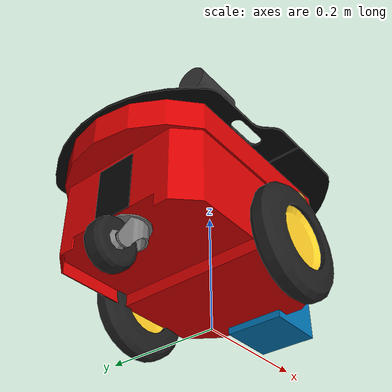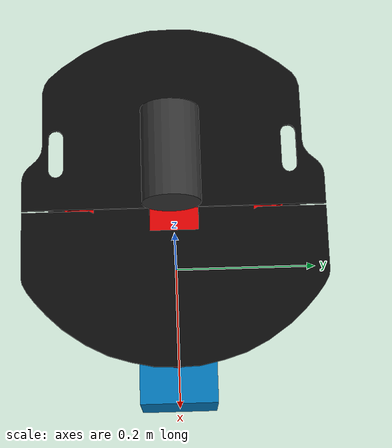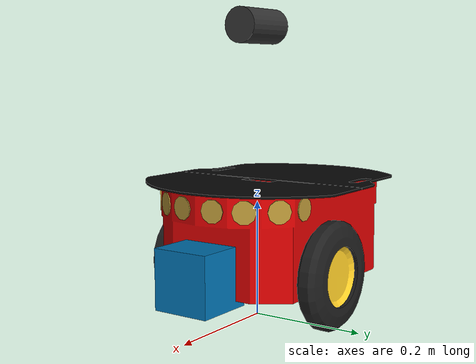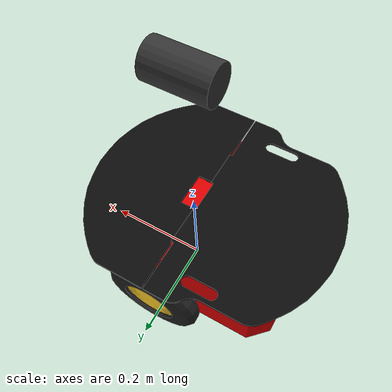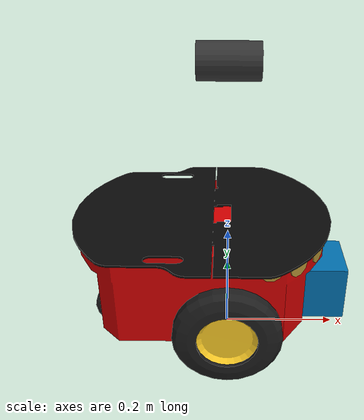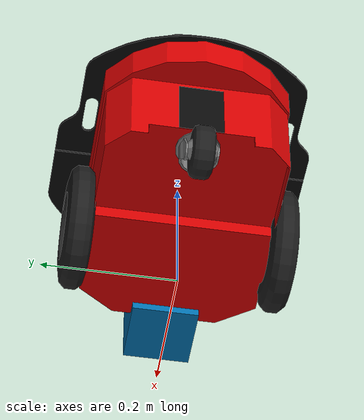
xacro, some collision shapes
<?xml version="1.0"?>
<robot xmlns:xacro="http://www.ros.org/wiki/xacro" name="pioneer3dx" >

  <!-- Import Rviz colors -->
  <xacro:include filename="$(find gazebo_plugins)/test/multi_robot_scenario/xacro/materials.xacro" />

  <!-- Import robot -->
  <xacro:include filename="$(find gazebo_plugins)/test/multi_robot_scenario/xacro/p3dx/pioneer3dx_body.xacro"/>
  <xacro:pioneer3dx_body name="chassis" parent="base_link" meshes="package://gazebo_plugins/test/multi_robot_scenario/meshes/p3dx"/>

  <!-- Laser  -->
  <xacro:include filename="$(find gazebo_plugins)/test/multi_robot_scenario/xacro/laser/hokuyo.xacro"/>
  <xacro:laser name="front_laser" parent="chassis" xyz="0.16 0 0.1" rpy="0 0 0" meshes="package://gazebo_plugins/test/multi_robot_scenario/meshes/laser"/>

  <!-- GPU Laser -->

  <xacro:include filename="$(find gazebo_plugins)/test/multi_robot_scenario/xacro/camera/camera.xacro"/>
  <xacro:cam name="front_camera" parent="chassis" xyz="0 0 0.5" rpy="0 0 0" />

</robot>

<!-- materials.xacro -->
<robot>

  <material name="black">
    <color rgba="0.0 0.0 0.0 1.0"/>
  </material>

  <material name="blue">
    <color rgba="0.0 0.0 0.8 1.0"/>
  </material>

  <material name="green">
    <color rgba="0.0 0.8 0.0 1.0"/>
  </material>

  <material name="grey">
    <color rgba="0.2 0.2 0.2 1.0"/>
  </material>

  <material name="orange">
    <color rgba="${255/255} ${108/255} ${10/255} 1.0"/>
  </material>

  <material name="brown">
    <color rgba="${222/255} ${207/255} ${195/255} 1.0"/>
  </material>

  <material name="red">
    <color rgba="0.8 0.0 0.0 1.0"/>
  </material>

  <material name="white">
    <color rgba="1.0 1.0 1.0 1.0"/>
  </material>

</robot>

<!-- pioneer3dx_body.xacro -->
<robot xmlns:xacro="http://www.ros.org/wiki/xacro">

  <xacro:include filename="inertia_tensors.xacro"/>
  <xacro:include filename="pioneer3dx_chassis.xacro"/>
  <xacro:include filename="battery_block.xacro"/>
  <xacro:include filename="pioneer3dx_wheel.xacro"/>
  <xacro:include filename="pioneer3dx_swivel.xacro"/>
  <xacro:include filename="pioneer3dx_sonar.xacro"/>
  <xacro:include filename="pioneer3dx_plugins.xacro"/>

  <xacro:macro name="pioneer3dx_body" params="name parent meshes">

    <!-- base_link -->
    <link name="${parent}"/>

    <!-- Chassis -->
    <xacro:pioneer_chassis name="${name}" parent="base_link" xyz="0 0 0" rpy="0 0 0"  meshes="${meshes}"/>

    <!-- Front Sonar -->
    <xacro:pioneer_sonar name="sonar" parent="${name}" xyz="0.109 0 0.209" rpy="0 0 0"  meshes="${meshes}"/>

    <!-- Akku0 -->
    <xacro:battery_block name="battery0" parent="${name}" x="-0.14" y="0.00"  z="0.13" mass="2.5" />

    <!-- Wheels -->
    <xacro:pioneer_wheel side="right" parent="${name}"  xyz="0  0.15 0.09" rpy="0 0 0" radius="0.09" meshes="${meshes}"/>
    <xacro:pioneer_wheel side="left"  parent="${name}"  xyz="0 -0.15 0.09" rpy="0 0 0" radius="0.09" meshes="${meshes}"/>
    <xacro:pioneer_swivel parent="${name}"  xyz="-0.185 0 0.055" rpy="0 0 0" meshes="${meshes}"/>

    <!-- Motor plugin -->
    <xacro:pioneer3dx_diff_drive />

    <!-- Joints plugin -->
    <xacro:pioneer3dx_joints_state_publisher />

  </xacro:macro>
</robot>

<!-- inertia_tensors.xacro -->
<!-- Thanks to Martin Guenther
  see https://github.com/uos/uos_tools/blob/fuerte/uos_common_urdf/common.xacro and
  see http://answers.gazebosim.org/question/4372/the-inertia-matrix-explained/ -->
<robot xmlns:xacro="http://ros.org/wiki/xacro">
  <xacro:property name="M_PI" value="3.1415926535897931" />

  <!-- see https://secure.wikimedia.org/wikipedia/en/wiki/List_of_moment_of_inertia_tensors -->

  <!-- #################### versions without origin #################### -->
  <xacro:macro name="sphere_inertial" params="radius mass">
    <inertial>
      <mass value="${mass}" />
      <origin xyz="0 0 0" />
      <inertia ixx="${0.4 * mass * radius * radius}" ixy="0.0" ixz="0.0"
        iyy="${0.4 * mass * radius * radius}" iyz="0.0"
        izz="${0.4 * mass * radius * radius}" />
    </inertial>
  </xacro:macro>

  <xacro:macro name="cylinder_inertial" params="radius length mass">
    <inertial>
      <mass value="${mass}" />
      <origin xyz="0 0 0" />
      <inertia ixx="${0.0833333 * mass * (3 * radius * radius + length * length)}" ixy="0.0" ixz="0.0"
        iyy="${0.0833333 * mass * (3 * radius * radius + length * length)}" iyz="0.0"
        izz="${0.5 * mass * radius * radius}" />
    </inertial>
  </xacro:macro>

  <xacro:macro name="box_inertial" params="x y z mass">
    <inertial>
      <mass value="${mass}" />
      <origin xyz="0 0 0" />
      <inertia ixx="${0.0833333 * mass * (y*y + z*z)}" ixy="0.0" ixz="0.0"
        iyy="${0.0833333 * mass * (x*x + z*z)}" iyz="0.0"
        izz="${0.0833333 * mass * (x*x + y*y)}" />
    </inertial>
  </xacro:macro>

  <!-- #################### versions with origin #################### -->
  <xacro:macro name="sphere_inertial_with_origin" params="radius mass *origin">
    <inertial>
      <mass value="${mass}" />
      <xacro:insert_block name="origin" />
      <inertia ixx="${0.4 * mass * radius * radius}" ixy="0.0" ixz="0.0"
        iyy="${0.4 * mass * radius * radius}" iyz="0.0"
        izz="${0.4 * mass * radius * radius}" />
    </inertial>
  </xacro:macro>

  <xacro:macro name="cylinder_inertial_with_origin" params="radius length mass *origin">
    <inertial>
      <mass value="${mass}" />
      <xacro:insert_block name="origin" />
      <inertia ixx="${0.0833333 * mass * (3 * radius * radius + length * length)}" ixy="0.0" ixz="0.0"
        iyy="${0.0833333 * mass * (3 * radius * radius + length * length)}" iyz="0.0"
        izz="${0.5 * mass * radius * radius}" />
    </inertial>
  </xacro:macro>

  <xacro:macro name="box_inertial_with_origin" params="x y z mass *origin">
    <inertial>
      <mass value="${mass}" />
      <xacro:insert_block name="origin" />
      <inertia ixx="${0.0833333 * mass * (y*y + z*z)}" ixy="0.0" ixz="0.0"
        iyy="${0.0833333 * mass * (x*x + z*z)}" iyz="0.0"
        izz="${0.0833333 * mass * (x*x + y*y)}" />
    </inertial>
  </xacro:macro>

</robot>

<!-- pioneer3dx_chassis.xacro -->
<robot xmlns:xacro="http://ros.org/wiki/xacro">
  <xacro:property name="M_PI" value="3.1415926535897931" />

  <xacro:macro name="pioneer_chassis" params="name parent xyz rpy meshes">

  <!-- Chassis -->
  <joint name="${parent}_${name}_joint" type="fixed">
    <origin xyz="${xyz}" rpy="${rpy}"/>
    <parent link="${parent}"/>
    <child link="${name}"/>
  </joint>
  <link name="${name}">
    <visual name="chassis_visual">
      <origin xyz="-0.045 0 0.148" rpy="0 0 0"/>
      <geometry name="pioneer_geom">
        <mesh filename="${meshes}/chassis.stl"/>
      </geometry>
      <material name="ChassisRed">
        <color rgba="0.851 0.0 0.0 1.0"/>
      </material>
    </visual>
    <collision>
      <origin xyz="-0.045 0 0.148" rpy="0 0 0"/>
      <geometry>
        <mesh filename="${meshes}/chassis.stl"/>
      </geometry>
    </collision>
    <xacro:box_inertial x="0.36" y="0.26"  z="0.18" mass="9.0" />
  </link>
  <gazebo reference="${name}">
    <material value="Gazebo/Red"/>
  </gazebo>

  <!-- Top -->
  <joint name="${name}_top_joint" type="fixed">
    <origin xyz="-0.045 0 0.234" rpy="0 0 0"/>
    <parent link="${name}"/>
    <child link="top"/>
  </joint>
  <link name="top">
    <visual>
      <origin xyz="0 0 0" rpy="0 0 0"/>
      <geometry name="top_geom">
        <mesh filename="${meshes}/top.stl"/>
      </geometry>
      <material name="TopBlack">
        <color rgba="0.038 0.038 0.038 1.0"/>
      </material>
    </visual>
    <collision>
    <origin xyz="0.0 0 0.0" rpy="0 0 0"/>
      <geometry>
        <mesh filename="${meshes}/top.stl"/>
      </geometry>
    </collision>
    <xacro:box_inertial x="0.445" y="0.38"  z="0.01" mass="1.0" />
  </link>
  <gazebo reference="top">
    <material value="Gazebo/Black"/>
  </gazebo>

  </xacro:macro>

</robot>

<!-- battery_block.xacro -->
<robot xmlns:xacro="http://ros.org/wiki/xacro">
  <xacro:property name="M_PI" value="3.1415926535897931" />

  <xacro:macro name="battery_block" params="name parent x y z mass">

  <joint name="${parent}_${name}_joint" type="fixed">
    <origin xyz="${x} ${y} ${z}" rpy="0 0 0"/>
    <parent link="${parent}"/>
    <child link="${name}"/>
  </joint>
  <link name="${name}">
    <visual name="${name}_visual">
      <origin xyz="0 0 0" rpy="0 0 0"/>
      <geometry name="${name}_geometry">
        <box size="0.151 0.065 0.094"/>
      </geometry>
      <material name="${name}_material">
        <color rgba="0.038 0.038 0.038 1.0"/>
      </material>
    </visual>
    <inertial>
      <mass value="${mass}" />
      <origin xyz="0 0 0" />
      <inertia ixx="${0.0833333 * mass * (y*y + z*z)}" ixy="0.0" ixz="0.0"
        iyy="${0.0833333 * mass * (x*x + z*z)}" iyz="0.0"
        izz="${0.0833333 * mass * (x*x + y*y)}" />
    </inertial>
  </link>
  <gazebo reference="${name}">
    <material value="Gazebo/Black"/>
  </gazebo>

  </xacro:macro>

</robot>

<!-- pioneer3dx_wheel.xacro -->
<robot
  xmlns:xacro="http://ros.org/wiki/xacro">
  <xacro:property name="M_PI" value="3.1415926535897931" />

  <xacro:macro name="pioneer_wheel" params="side parent xyz rpy radius meshes">

  <!-- Hubcap -->
  <joint name="${side}_hub_joint" type="continuous">
    <origin xyz="${xyz}" rpy="${rpy}"/>
    <parent link="${parent}"/>
    <child link="${side}_hub"/>
    <axis xyz="0 1 0"/>
  </joint>
  <link name="${side}_hub">
    <inertial>
      <mass value="0.01"/>
      <origin xyz="0 0 0"/>
      <inertia ixx="0.012411765597" ixy="0" ixz="0" iyy="0.015218160428" iyz="0" izz="0.011763977943"/>
    </inertial>
    <visual name="base_visual">
      <origin xyz="0 0 0" rpy="0 0 0"/>
      <geometry name="pioneer_geom">
        <mesh filename="${meshes}/${side}_hubcap.stl"/>
      </geometry>
      <material name="HubcapYellow">
        <color rgba="1.0 0.811 0.151 1.0"/>
      </material>
    </visual>
    <collision>
      <origin xyz="0 0 0" rpy="0 0 0"/>
      <geometry>
        <box size="0 0 0"/>
      </geometry>
    </collision>
  </link>
  <gazebo reference="${side}_hub">
    <material value="Gazebo/Yellow"/>
  </gazebo>

  <!-- Wheel -->
  <joint name="${side}_wheel_joint" type="fixed">
    <axis xyz="0 1 0"/>
    <origin xyz="0 0 0" rpy="0 0 0"/>
    <parent link="${side}_hub"/>
    <child link="${side}_wheel"/>
  </joint>
  <link name="${side}_wheel">
    <inertial>
      <mass value="0.5"/>
      <origin xyz="0 0 0"/>
      <inertia ixx="0.012411765597" ixy="0" ixz="0" iyy="0.015218160428" iyz="0" izz="0.011763977943"/>
    </inertial>
    <visual name="base_visual">
      <origin xyz="0 0 0" rpy="0 0 0"/>
      <geometry name="pioneer_geom">
        <mesh filename="${meshes}/${side}_wheel.stl"/>
      </geometry>
      <material name="WheelBlack">
        <color rgba="0.117 0.117 0.117 1"/>
      </material>
    </visual>
    <collision>
      <origin xyz="0 0 0" rpy="${-3.1415927/2} 0 0"/>
      <geometry>
        <cylinder radius="${radius}" length="0.01"/>
      </geometry>
    </collision>
  </link>
  <gazebo reference="${side}_wheel">
    <material value="Gazebo/Black"/>
  </gazebo>

  </xacro:macro>

</robot>

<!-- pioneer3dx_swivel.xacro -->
<robot xmlns:xacro="http://ros.org/wiki/xacro">
  <xacro:property name="M_PI" value="3.1415926535897931" />

  <xacro:macro name="pioneer_swivel" params="parent xyz rpy meshes">

  <!-- Swivel -->
  <joint name="chassis_swivel_joint" type="continuous">
    <origin xyz="${xyz}" rpy="${rpy}"/>
    <axis xyz="0 0 1"/>
    <anchor xyz="0 0 0"/>
    <limit effort="100" velocity="100" k_velocity="0"/>
    <joint_properties damping="0.0" friction="0.0"/>
    <parent link="${parent}"/>
    <child link="swivel"/>
  </joint>
  <link name="swivel">
    <inertial>
      <mass value="0.1"/>
      <origin xyz="0 0 0"/>
      <inertia ixx="0.01" ixy="0" ixz="0" iyy="0.01" iyz="0" izz="0.01"/>
    </inertial>
    <visual name="base_visual">
      <origin xyz="0 0 0" rpy="0 0 0"/>
      <geometry name="pioneer_geom">
        <mesh filename="${meshes}/swivel.stl"/>
      </geometry>
      <material name="swivel">
        <color rgba="0.5 0.5 0.5 1"/>
      </material>
    </visual>
    <collision>
      <origin xyz="0 0 0" rpy="0 0 0"/>
      <geometry>
        <box size="0 0 0"/>
      </geometry>
    </collision>
  </link>
  <gazebo reference="swivel">
    <material value="Gazebo/Grey"/>
  </gazebo>

  <!-- Center Wheel -->
  <joint name="swivel_wheel_joint" type="continuous">
    <origin xyz="-0.026 0 -0.016" rpy="0 0 0"/>
    <axis xyz="0 1 0"/>
    <anchor xyz="0 0 0"/>
    <limit effort="100" velocity="100" k_velocity="0"/>
    <joint_properties damping="0.0" friction="0.0"/>
    <parent link="swivel"/>
    <child link="center_wheel"/>
  </joint>
  <link name="center_wheel">
    <inertial>
      <mass value="0.1"/>
      <origin xyz="0 0 0"/>
      <inertia ixx="0.012411765597" ixy="-0.000711733678" ixz="0.00050272983" iyy="0.015218160428" iyz="-0.000004273467" izz="0.011763977943"/>
    </inertial>
    <visual name="base_visual">
      <origin xyz="0 0 0" rpy="0 0 0"/>
      <geometry name="pioneer_geom">
        <mesh filename="${meshes}/center_wheel.stl"/>
      </geometry>
      <material name="WheelBlack">
        <color rgba="0.117 0.117 0.117 1"/>
      </material>
    </visual>
    <collision>
      <origin xyz="0 0 0" rpy="${-3.1415927/2.0} 0 0"/>
      <geometry>
        <cylinder radius="0.0375" length="0.01"/>
      </geometry>
    </collision>
  </link>
  <gazebo reference="center_wheel">
    <material value="Gazebo/Black"/>
  </gazebo>

  <!-- Center Hubcap -->
  <joint name="wheel_hubcap_joint" type="fixed">
    <origin xyz="-0.0035 0 -0.001" rpy="0 0 0"/>
    <parent link="center_wheel"/>
    <child link="center_hubcap"/>
  </joint>
  <link name="center_hubcap">
    <inertial>
      <mass value="0.01"/>
      <origin xyz="0 0 0"/>
      <inertia ixx="0.012411765597" ixy="-0.000711733678" ixz="0.00050272983" iyy="0.015218160428" iyz="-0.000004273467" izz="0.011763977943"/>
    </inertial>
    <visual name="base_visual">
      <origin xyz="0 0 0" rpy="0 0 0"/>
      <geometry name="pioneer_geom">
        <mesh filename="${meshes}/center_hubcap.stl"/>
      </geometry>
      <material name="swivel">
        <color rgba="0.5 0.5 0.5 1"/>
      </material>
    </visual>
    <collision>
      <origin xyz="0 0 0" rpy="0 0 0"/>
      <geometry>
        <box size="0 0 0"/>
      </geometry>
    </collision>
  </link>
  <gazebo reference="center_hubcap">
    <material value="Gazebo/Grey"/>
  </gazebo>

  </xacro:macro>

</robot>

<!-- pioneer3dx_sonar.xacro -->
<robot xmlns:xacro="http://ros.org/wiki/xacro">
  <xacro:property name="M_PI" value="3.1415926535897931" />

  <xacro:macro name="pioneer_sonar" params="name parent xyz rpy meshes">

  <!-- Front Sonar -->
  <joint name="${parent}_${name}_joint" type="fixed">
    <origin xyz="${xyz}" rpy="${rpy}"/>
    <parent link="${parent}"/>
    <child link="${name}"/>
  </joint>
  <link name="${name}">
    <inertial>
      <mass value="0.0001"/>
      <origin xyz="0 0 0"/>
      <inertia ixx="1" ixy="0" ixz="0" iyy="1" iyz="0" izz="1"/>
    </inertial>
    <visual name="front_sonar_vis">
      <origin xyz="0 0 0" rpy="0 0 0"/>
      <geometry name="pioneer_geom">
        <mesh filename="${meshes}/back_sonar.stl"/>
      </geometry>
      <material name="SonarYellow">
        <color rgba="0.715 0.583 0.210 1.0"/>
      </material>
    </visual>
    <collision>
      <origin xyz="0 0 0" rpy="0 0 0"/>
      <geometry>
        <box size="0 0 0"/>
      </geometry>
    </collision>
  </link>
  <gazebo reference="${name}">
    <material value="Gazebo/Yellow"/>
  </gazebo>

  </xacro:macro>

</robot>

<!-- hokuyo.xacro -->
<robot xmlns:xacro="http://www.ros.org/wiki/xacro">

<!-- Front Laser -->
<xacro:macro name="laser" params="name parent xyz rpy meshes" >

  <joint name="${parent}_${name}_joint" type="fixed">
      <axis xyz="0 0 1" />
      <origin xyz="${xyz}" rpy="${rpy}"/>
      <parent link="${parent}"/>
      <child link="${name}"/>
    </joint>

    <link name="${name}">
      <collision>
        <origin xyz="0 0 0" rpy="0 0 0"/>
        <geometry>
          <box size="0.1 0.1 0.1"/>
        </geometry>
      </collision>
      <visual>
        <origin xyz="0 0 0" rpy="0 0 0"/>
        <geometry>
          <mesh filename="${meshes}/hokuyo.dae"/>
        </geometry>
      </visual>
      <inertial>
        <mass value="1e-5" />
        <origin xyz="0 0 0" rpy="0 0 0"/>
        <inertia ixx="1e-6" ixy="0" ixz="0" iyy="1e-6" iyz="0" izz="1e-6" />
      </inertial>
    </link>

    <gazebo reference="${name}">
        <sensor name="laser" type="ray">
        <pose>0 0 0 0 0 0</pose>
          <ray>
            <scan>
              <horizontal>
                <!-- The URG-04LX-UG01  has  683 steps with 0.35139 Degree resolution -->
                <resolution>1</resolution>
                <max_angle>2.0944</max_angle> <!-- 120 Degree -->
                <min_angle>-2.0944</min_angle> <!-- -120 Degree -->
                <samples>683</samples>
              </horizontal>
            </scan>
            <range>
              <min>0.08</min>
              <max>5</max>
              <resolution>0.01</resolution>
            </range>
          </ray>

          <plugin name="laser" filename="libgazebo_ros_laser.so" >
            <robotNamespace></robotNamespace>
            <topicName>${name}/scan</topicName>
            <frameName>${name}</frameName>
          </plugin>

          <always_on>1</always_on>
          <update_rate>30</update_rate>
          <visualize>true</visualize>
        </sensor>
    </gazebo>
</xacro:macro>

</robot>

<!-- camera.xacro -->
<robot xmlns:xacro="http://www.ros.org/wiki/xacro">

<!-- Camera -->
<xacro:macro name="cam" params="name parent xyz rpy">

  <joint name="${parent}_${name}_joint" type="fixed">
      <axis xyz="0 0 1" />
      <origin xyz="${xyz}" rpy="${rpy}"/>
      <parent link="${parent}"/>
      <child link="${name}"/>
  </joint>

  <!-- Camera -->
  <link name="${name}">
    <inertial>
      <mass value="1e-5" />
      <origin xyz="0 0 0" rpy="0 0 0"/>
      <inertia ixx="1e-6" ixy="0" ixz="0" iyy="1e-6" iyz="0" izz="1e-6" />
    </inertial>
    <visual>
      <origin xyz="0 0 0" rpy="0 1.57 0"/>
      <geometry>
        <cylinder radius="0.03" length="0.1"/>
      </geometry>
      <material name="grey"/>
    </visual>
    <collision>
      <origin xyz="0 0 0" rpy="0 1.57 0"/>
      <geometry>
        <cylinder radius="0.03" length="0.1"/>
      </geometry>
    </collision>
  </link>
  <gazebo reference="${name}">
    <material value="Gazebo/Grey"/>
  </gazebo>

  <gazebo reference="${name}">
    <sensor type="camera" name="camera1">
      <update_rate>30.0</update_rate>
      <camera name="head">
        <horizontal_fov>1.3962634</horizontal_fov>
        <image>
          <width>800</width>
          <height>800</height>
          <format>R8G8B8</format>
        </image>
        <clip>
          <near>0.02</near>
          <far>300</far>
        </clip>
        <noise>
          <type>gaussian</type>
          <!-- Noise is sampled independently per pixel on each frame.
               That pixel's noise value is added to each of its color
               channels, which at that point lie in the range [0,1]. -->
          <mean>0.0</mean>
          <stddev>0.007</stddev>
        </noise>
      </camera>
      <plugin name="camera_controller" filename="libgazebo_ros_camera.so">
        <robotNamespace></robotNamespace>
        <alwaysOn>true</alwaysOn>
        <updateRate>0.0</updateRate>
        <cameraName>${name}</cameraName>
        <imageTopicName>image_raw</imageTopicName>
        <cameraInfoTopicName>camera_info</cameraInfoTopicName>
        <frameName>${name}</frameName>
        <hackBaseline>0.07</hackBaseline>
        <distortionK1>0.0</distortionK1>
        <distortionK2>0.0</distortionK2>
        <distortionK3>0.0</distortionK3>
        <distortionT1>0.0</distortionT1>
        <distortionT2>0.0</distortionT2>
      </plugin>
    </sensor>
  </gazebo>

</xacro:macro>
</robot>
